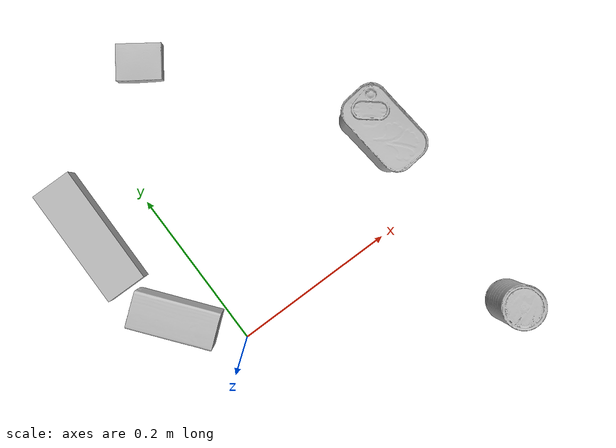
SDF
<sdf version="1.4">
  <world name="default">
    <light name="light1" type="point">
      <pose>0 0 1 0 0 0</pose>
      <diffuse>3 3 3 1</diffuse>
      <specular>3 3 3 1</specular>
    </light>
    <light name="light2" type="point">
      <pose>0 0.5 2 0 0 0</pose>
      <diffuse>1 1 1 1</diffuse>
      <specular>1 1 1 1</specular>
    </light>
    <light name="light3" type="point">
      <pose>0 0.5 2 0 0 0</pose>
      <diffuse>3 3 3 1</diffuse>
      <specular>3 3 3 1</specular>
    </light>
    <scene>
      <ambient>0.7 0.7 0.7</ambient>
    </scene>
    <model name="box1">
      <link name="link_box1">
        <collision name="default">
          <geometry>
            <mesh>
              <uri>model://pudding_box/collision_meshes/collision.obj</uri>
              <scale>0.5 0.5 0.5</scale>
            </mesh>
          </geometry>
          <surface>
            <friction>
              <ode>
                <mu>0.5</mu>
                <mu2>0.5</mu2>
              </ode>
            </friction>
          <contact>
        <ode>
            <max_vel>0</max_vel>
            <min_depth>0.0001</min_depth>
            <kp>1e8</kp>
        </ode>
    </contact></surface>
        </collision>
        <visual name="default">
          <geometry>
            <mesh>
              <uri>model://pudding_box/visual_meshes/visual.dae</uri>
              <scale>0.5 0.5 0.5</scale>
            </mesh>
          </geometry>
        </visual>
        <inertial>
          <mass>0.0642586499452591</mass>
          <pose>0.00024474109522998333 0.00040339428232982755 -0.0002594413817860186 0.005213101302141142 -0.006603800581388343 0.020079827019462423</pose>
          <inertia>
            <ixx>1.8160274e-05</ixx>
            <iyy>1.221836e-05</iyy>
            <izz>2.6818392e-05</izz>
            <ixy>0</ixy>
            <ixz>0</ixz>
            <iyz>0</iyz>
          </inertia>
        </inertial>
      </link>
      <pose>0.09226372092962265 0.33651626110076904 0.009862902574241161 0.022348122363557616 -0.011392053295558426 -2.190732278246384</pose>
    </model>
    <model name="box2">
      <link name="link_box2">
        <collision name="default">
          <geometry>
            <mesh>
              <uri>model://wood_block/collision_meshes/collision.obj</uri>
              <scale>0.5 0.5 0.5</scale>
            </mesh>
          </geometry>
          <surface>
            <friction>
              <ode>
                <mu>0.5</mu>
                <mu2>0.5</mu2>
              </ode>
            </friction>
          <contact>
        <ode>
            <max_vel>0</max_vel>
            <min_depth>0.0001</min_depth>
            <kp>1e8</kp>
        </ode>
    </contact></surface>
        </collision>
        <visual name="default">
          <geometry>
            <mesh>
              <uri>model://wood_block/visual_meshes/visual.dae</uri>
              <scale>0.5 0.5 0.5</scale>
            </mesh>
          </geometry>
        </visual>
        <inertial>
          <mass>0.2432606816291809</mass>
          <pose>-2.9066577553749084e-06 -0.000285404734313488 0.00013204290007706732 -0.0522103103121059 -0.005192696448147362 -0.0068613788455752145</pose>
          <inertia>
            <ixx>8.1379905e-05</ixx>
            <iyy>0.0002570791</iyy>
            <izz>0.00025611752</izz>
            <ixy>0</ixy>
            <ixz>0</ixz>
            <iyz>0</iyz>
          </inertia>
        </inertial>
      </link>
      <pose>-0.0511276014149189 0.06977725774049759 0.022629264742136 -0.005208391847864125 0.0057187505623926315 2.243501943397309</pose>
    </model>
    <model name="box3">
      <link name="link_box3">
        <collision name="default">
          <geometry>
            <mesh>
              <uri>model://jenga/collision_meshes/collision.obj</uri>
              <scale>1.0 1.0 1.0</scale>
            </mesh>
          </geometry>
          <surface>
            <friction>
              <ode>
                <mu>0.5</mu>
                <mu2>0.5</mu2>
              </ode>
            </friction>
          <contact>
        <ode>
            <max_vel>0</max_vel>
            <min_depth>0.0001</min_depth>
            <kp>1e8</kp>
        </ode>
    </contact></surface>
        </collision>
        <visual name="default">
          <geometry>
            <mesh>
              <uri>model://jenga/visual_meshes/visual.dae</uri>
              <scale>1.0 1.0 1.0</scale>
            </mesh>
          </geometry>
        </visual>
        <inertial>
          <mass>0.20405839383602142</mass>
          <pose>-2.502855807051674e-07 -0.00010250010382151231 -4.0923401684267446e-05 0.0 -7.342155186052628e-07 0.0</pose>
          <inertia>
            <ixx>5.6467907e-05</ixx>
            <iyy>0.000382625</iyy>
            <izz>0.00040848472</izz>
            <ixy>0</ixy>
            <ixz>0</ixz>
            <iyz>0</iyz>
          </inertia>
        </inertial>
      </link>
      <pose>-0.07453400641679764 0.2055736631155014 0.014999997802078724 1.378482423162471e-09 4.2515143574737246e-09 1.5590130096697952</pose>
    </model>
    <model name="can1">
      <link name="link_can1">
        <collision name="default">
          <geometry>
            <mesh>
              <uri>model://potted_meat_can/collision_meshes/collision.obj</uri>
              <scale>1.0 1.0 1.0</scale>
            </mesh>
          </geometry>
          <surface>
            <friction>
              <ode>
                <mu>0.5</mu>
                <mu2>0.5</mu2>
              </ode>
            </friction>
          <contact>
        <ode>
            <max_vel>0</max_vel>
            <min_depth>0.0001</min_depth>
            <kp>1e8</kp>
        </ode>
    </contact></surface>
        </collision>
        <visual name="default">
          <geometry>
            <mesh>
              <uri>model://potted_meat_can/visual_meshes/visual.dae</uri>
              <scale>1.0 1.0 1.0</scale>
            </mesh>
          </geometry>
        </visual>
        <inertial>
          <mass>0.4665880799293518</mass>
          <pose>0.0002288814284838736 -5.989112105453387e-05 -0.0006367449532262981 -0.028093382538733707 -0.007232605550223235 0.01540626728411476</pose>
          <inertia>
            <ixx>0.0006002166</ixx>
            <iyy>0.0003646772</iyy>
            <izz>0.00043654343</izz>
            <ixy>0</ixy>
            <ixz>0</ixz>
            <iyz>0</iyz>
          </inertia>
        </inertial>
      </link>
      <pose>0.2670508623123169 0.10230012238025665 0.04212801158428192 -6.269432774048237e-08 -6.328547318800301e-07 -3.0438437421840074</pose>
    </model>
    <model name="can2">
      <link name="link_can2">
        <collision name="default">
          <geometry>
            <mesh>
              <uri>model://master_chef_can/collision_meshes/collision.obj</uri>
              <scale>0.5 0.5 0.5</scale>
            </mesh>
          </geometry>
          <surface>
            <friction>
              <ode>
                <mu>0.5</mu>
                <mu2>0.5</mu2>
              </ode>
            </friction>
          <contact>
        <ode>
            <max_vel>0</max_vel>
            <min_depth>0.0001</min_depth>
            <kp>1e8</kp>
        </ode>
    </contact></surface>
        </collision>
        <visual name="default">
          <geometry>
            <mesh>
              <uri>model://master_chef_can/visual_meshes/visual.dae</uri>
              <scale>0.5 0.5 0.5</scale>
            </mesh>
          </geometry>
        </visual>
        <inertial>
          <mass>0.1648906171321869</mass>
          <pose>-4.661964703700505e-05 1.3926853625889635e-07 -5.079993206891231e-05 -0.0017995099244119924 0.0006479308957776391 -0.6102586503741109</pose>
          <inertia>
            <ixx>9.677961e-05</ixx>
            <iyy>9.606731e-05</iyy>
            <izz>5.3478136e-05</izz>
            <ixy>0</ixy>
            <ixz>0</ixz>
            <iyz>0</iyz>
          </inertia>
        </inertial>
      </link>
      <pose>0.27391475439071655 -0.14913064241409302 0.03530198335647583 -1.2677951777115713e-06 -8.914379396151385e-07 -2.1880956308796375</pose>
    </model>
  <physics type="ode">
      <max_contacts>50</max_contacts>
      <ode>
        <solver>
          <type>quick</type>
          <iters>75</iters>
        </solver>
        <constraints>
          <contact_max_correcting_vel>0</contact_max_correcting_vel>
          <contact_surface_layer>0</contact_surface_layer>
        </constraints>
      </ode>
    </physics></world>
</sdf>
